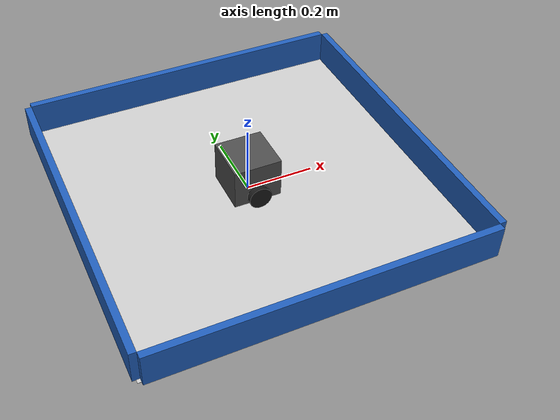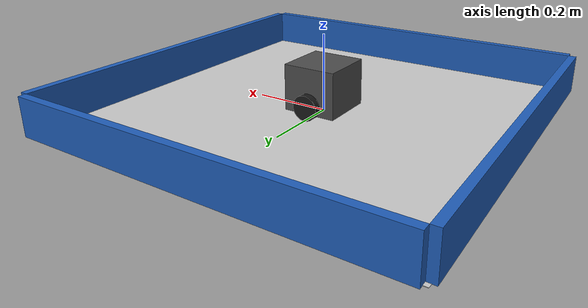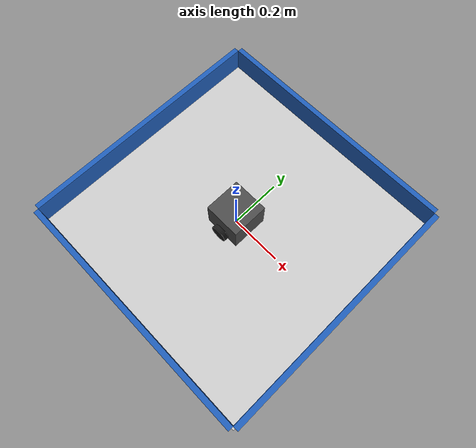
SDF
<?xml version="1.0"?>
<sdf version="1.9">
  <world name="turtlebot_collision_detection">

    <plugin filename="gz-sim-physics-system"
            name="gz::sim::systems::Physics"/>
    <plugin filename="gz-sim-user-commands-system"
            name="gz::sim::systems::UserCommands"/>
    <plugin filename="gz-sim-scene-broadcaster-system"
            name="gz::sim::systems::SceneBroadcaster"/>
    <plugin filename="gz-sim-imu-system"
            name="gz::sim::systems::Imu"/>

    <physics name="default_physics" type="ode">
      <max_step_size>0.001</max_step_size>
      <real_time_factor>1.0</real_time_factor>
    </physics>

    <scene>
      <ambient>0.6 0.6 0.6 1</ambient>
      <background>0.7 0.8 0.9 1</background>
      <shadows>false</shadows>
    </scene>

    <light type="directional" name="sun">
      <cast_shadows>false</cast_shadows>
      <pose>0 0 10 0 0 0</pose>
      <diffuse>0.9 0.9 0.9 1</diffuse>
      <specular>0.2 0.2 0.2 1</specular>
      <direction>-0.5 0.2 -0.9</direction>
    </light>

    <model name="floor">
      <static>true</static>
      <link name="link">
        <collision name="collision">
          <geometry>
            <plane>
              <normal>0 0 1</normal>
              <size>1 1</size>
            </plane>
          </geometry>
        </collision>
        <visual name="visual">
          <geometry>
            <plane>
              <normal>0 0 1</normal>
              <size>1 1</size>
            </plane>
          </geometry>
          <material>
            <ambient>0.8 0.8 0.8 1</ambient>
            <diffuse>0.8 0.8 0.8 1</diffuse>
          </material>
        </visual>
      </link>
    </model>

    <model name="wall_1">
      <static>true</static>
      <pose>0.5 0 0.05 0 0 0</pose>
      <link name="link">
        <collision name="collision">
          <geometry><box><size>0.02 0.98 0.1</size></box></geometry>
        </collision>
        <visual name="visual">
          <geometry><box><size>0.02 0.98 0.1</size></box></geometry>
          <material>
            <ambient>0.125 0.369 0.729 1</ambient>
            <diffuse>0.125 0.369 0.729 1</diffuse>
          </material>
        </visual>
      </link>
    </model>

    <model name="wall_2">
      <static>true</static>
      <pose>-0.5 0 0.05 0 0 0</pose>
      <link name="link">
        <collision name="collision">
          <geometry><box><size>0.02 0.98 0.1</size></box></geometry>
        </collision>
        <visual name="visual">
          <geometry><box><size>0.02 0.98 0.1</size></box></geometry>
          <material>
            <ambient>0.125 0.369 0.729 1</ambient>
            <diffuse>0.125 0.369 0.729 1</diffuse>
          </material>
        </visual>
      </link>
    </model>

    <model name="wall_3">
      <static>true</static>
      <pose>0 -0.5 0.05 0 0 1.5708</pose>
      <link name="link">
        <collision name="collision">
          <geometry><box><size>0.02 0.98 0.1</size></box></geometry>
        </collision>
        <visual name="visual">
          <geometry><box><size>0.02 0.98 0.1</size></box></geometry>
          <material>
            <ambient>0.125 0.369 0.729 1</ambient>
            <diffuse>0.125 0.369 0.729 1</diffuse>
          </material>
        </visual>
      </link>
    </model>

    <model name="wall_4">
      <static>true</static>
      <pose>0 0.5 0.05 0 0 1.5708</pose>
      <link name="link">
        <collision name="collision">
          <geometry><box><size>0.02 0.98 0.1</size></box></geometry>
        </collision>
        <visual name="visual">
          <geometry><box><size>0.02 0.98 0.1</size></box></geometry>
          <material>
            <ambient>0.125 0.369 0.729 1</ambient>
            <diffuse>0.125 0.369 0.729 1</diffuse>
          </material>
        </visual>
      </link>
    </model>

    <model name="TurtleBot3Burger">
      <pose>0 0 0.033 0 0 0</pose>

      <link name="base_link">
        <inertial>
          <mass>1.0</mass>
          <inertia>
            <ixx>0.0035</ixx>
            <ixy>0</ixy>
            <ixz>0</ixz>
            <iyy>0.0035</iyy>
            <iyz>0</iyz>
            <izz>0.0035</izz>
          </inertia>
        </inertial>
        <collision name="collision">
          <pose>0 0 0.037 0 0 0</pose>
          <geometry><box><size>0.14 0.14 0.12</size></box></geometry>
        </collision>
        <visual name="visual">
          <pose>0 0 0.037 0 0 0</pose>
          <geometry><box><size>0.14 0.14 0.12</size></box></geometry>
          <material>
            <ambient>0.2 0.2 0.2 1</ambient>
            <diffuse>0.3 0.3 0.3 1</diffuse>
          </material>
        </visual>

        <sensor name="imu_sensor" type="imu">
          <always_on>1</always_on>
          <update_rate>1000</update_rate>
          <topic>imu</topic>
          <imu>
            <linear_acceleration>
              <x>
                <noise type="gaussian">
                  <mean>0.0</mean>
                  <stddev>0.1</stddev>
                  <bias_mean>0.2</bias_mean>
                  <bias_stddev>0.1</bias_stddev>
                </noise>
              </x>
              <y>
                <noise type="gaussian">
                  <mean>0.0</mean>
                  <stddev>0.1</stddev>
                  <bias_mean>0.2</bias_mean>
                  <bias_stddev>0.1</bias_stddev>
                </noise>
              </y>
              <z>
                <noise type="gaussian">
                  <mean>0.0</mean>
                  <stddev>0.1</stddev>
                  <bias_mean>0.2</bias_mean>
                  <bias_stddev>0.1</bias_stddev>
                </noise>
              </z>
            </linear_acceleration>
          </imu>
        </sensor>
      </link>

      <link name="wheel_left_link">
        <pose>0 0.08 0 -1.5708 0 0</pose>
        <inertial>
          <mass>0.05</mass>
          <inertia>
            <ixx>1.5e-05</ixx>
            <ixy>0</ixy>
            <ixz>0</ixz>
            <iyy>1.5e-05</iyy>
            <iyz>0</iyz>
            <izz>2.7e-05</izz>
          </inertia>
        </inertial>
        <collision name="collision">
          <geometry>
            <cylinder>
              <radius>0.033</radius>
              <length>0.018</length>
            </cylinder>
          </geometry>
          <surface>
            <friction>
              <ode>
                <mu>1.0</mu>
                <mu2>1.0</mu2>
              </ode>
            </friction>
          </surface>
        </collision>
        <visual name="visual">
          <geometry>
            <cylinder>
              <radius>0.033</radius>
              <length>0.018</length>
            </cylinder>
          </geometry>
          <material>
            <ambient>0.1 0.1 0.1 1</ambient>
            <diffuse>0.1 0.1 0.1 1</diffuse>
          </material>
        </visual>
      </link>
      <joint name="wheel_left_joint" type="revolute">
        <parent>base_link</parent>
        <child>wheel_left_link</child>
        <axis>
          <xyz expressed_in="__model__">0 1 0</xyz>
          <limit>
            <lower>-1e+16</lower>
            <upper>1e+16</upper>
          </limit>
        </axis>
      </joint>

      <link name="wheel_right_link">
        <pose>0 -0.08 0 -1.5708 0 0</pose>
        <inertial>
          <mass>0.05</mass>
          <inertia>
            <ixx>1.5e-05</ixx>
            <ixy>0</ixy>
            <ixz>0</ixz>
            <iyy>1.5e-05</iyy>
            <iyz>0</iyz>
            <izz>2.7e-05</izz>
          </inertia>
        </inertial>
        <collision name="collision">
          <geometry>
            <cylinder>
              <radius>0.033</radius>
              <length>0.018</length>
            </cylinder>
          </geometry>
          <surface>
            <friction>
              <ode>
                <mu>1.0</mu>
                <mu2>1.0</mu2>
              </ode>
            </friction>
          </surface>
        </collision>
        <visual name="visual">
          <geometry>
            <cylinder>
              <radius>0.033</radius>
              <length>0.018</length>
            </cylinder>
          </geometry>
          <material>
            <ambient>0.1 0.1 0.1 1</ambient>
            <diffuse>0.1 0.1 0.1 1</diffuse>
          </material>
        </visual>
      </link>
      <joint name="wheel_right_joint" type="revolute">
        <parent>base_link</parent>
        <child>wheel_right_link</child>
        <axis>
          <xyz expressed_in="__model__">0 1 0</xyz>
          <limit>
            <lower>-1e+16</lower>
            <upper>1e+16</upper>
          </limit>
        </axis>
      </joint>

      <link name="caster_link">
        <pose>-0.05 0 -0.023 0 0 0</pose>
        <inertial>
          <mass>0.01</mass>
          <inertia>
            <ixx>1e-06</ixx>
            <ixy>0</ixy>
            <ixz>0</ixz>
            <iyy>1e-06</iyy>
            <iyz>0</iyz>
            <izz>1e-06</izz>
          </inertia>
        </inertial>
        <collision name="collision">
          <geometry><sphere><radius>0.01</radius></sphere></geometry>
          <surface>
            <friction>
              <ode>
                <mu>0.01</mu>
                <mu2>0.01</mu2>
              </ode>
            </friction>
          </surface>
        </collision>
        <visual name="visual">
          <geometry><sphere><radius>0.01</radius></sphere></geometry>
          <material>
            <ambient>0.1 0.1 0.1 1</ambient>
            <diffuse>0.1 0.1 0.1 1</diffuse>
          </material>
        </visual>
      </link>
      <joint name="caster_joint" type="fixed">
        <parent>base_link</parent>
        <child>caster_link</child>
      </joint>

      <plugin filename="gz-sim-diff-drive-system"
              name="gz::sim::systems::DiffDrive">
        <left_joint>wheel_left_joint</left_joint>
        <right_joint>wheel_right_joint</right_joint>
        <wheel_separation>0.16</wheel_separation>
        <wheel_radius>0.033</wheel_radius>

        <max_linear_acceleration>0.5</max_linear_acceleration>
        <min_linear_acceleration>-0.5</min_linear_acceleration>
        <max_angular_acceleration>2.0</max_angular_acceleration>
        <min_angular_acceleration>-2.0</min_angular_acceleration>

        <odom_publish_frequency>50</odom_publish_frequency>
        <topic>cmd_vel</topic>
        <frame_id>odom</frame_id>
        <child_frame_id>base_link</child_frame_id>
      </plugin>

      <plugin filename="gz-sim-odometry-publisher-system"
              name="gz::sim::systems::OdometryPublisher">
        <dimensions>2</dimensions>
        <odom_publish_frequency>50</odom_publish_frequency>
        <odom_topic>/model/TurtleBot3Burger/ground_truth_odometry</odom_topic>
      </plugin>
    </model>

  </world>
</sdf>
